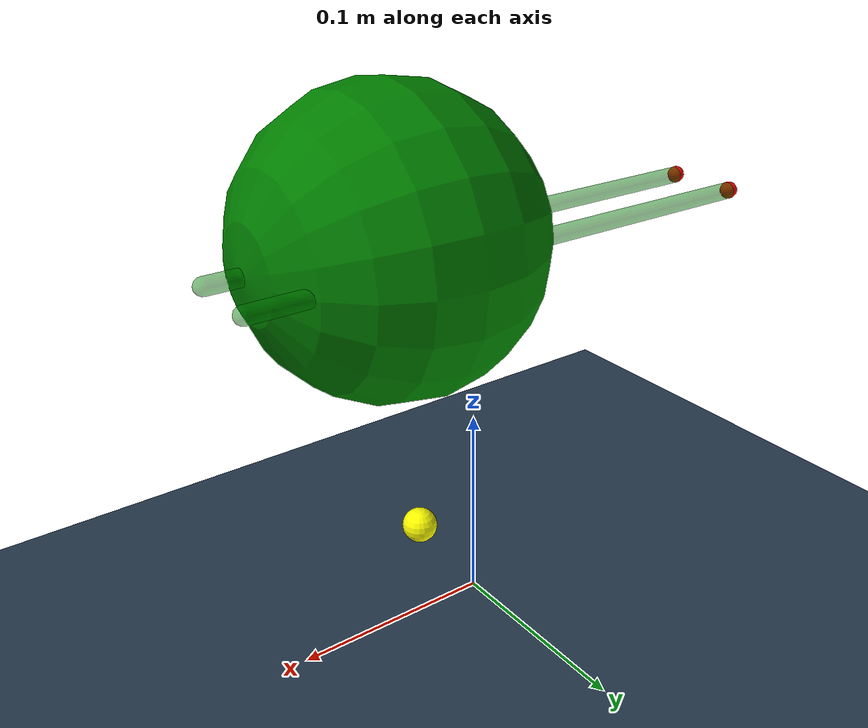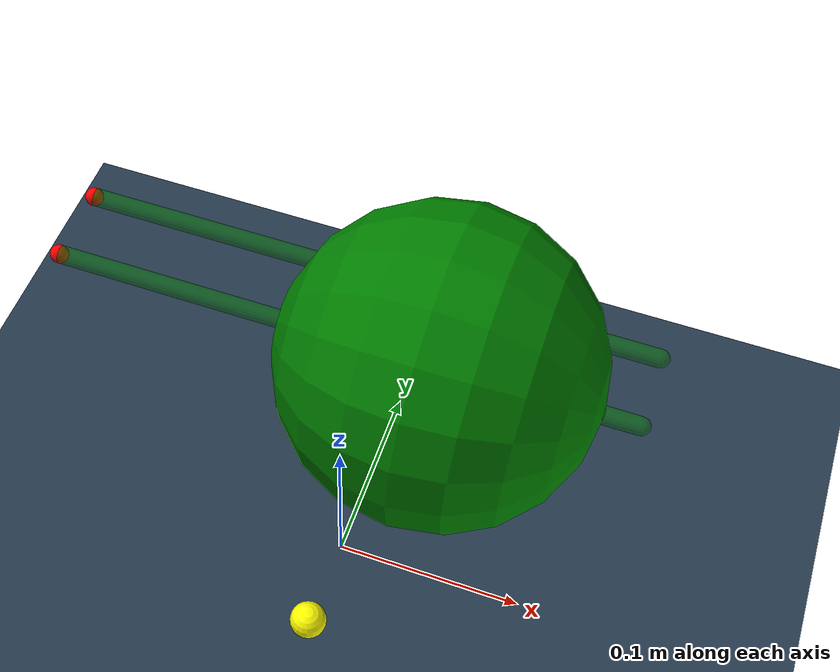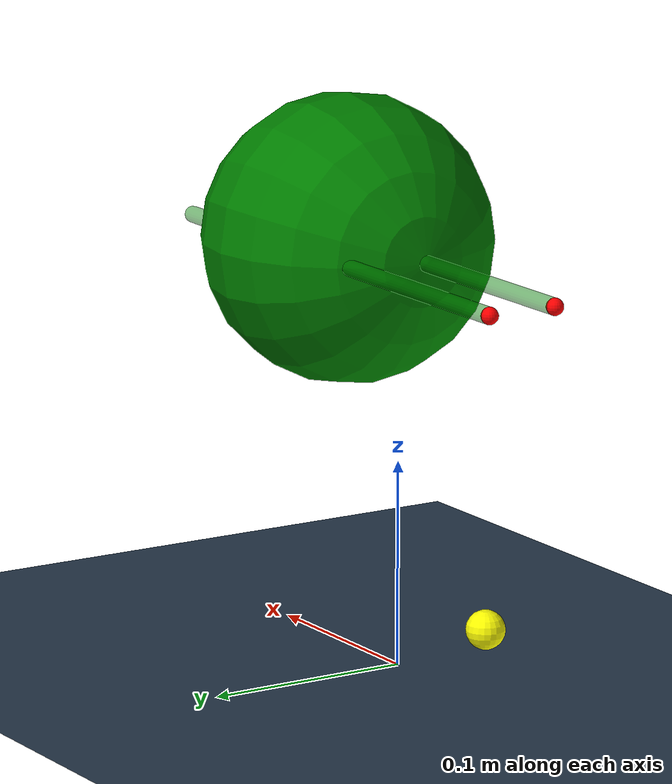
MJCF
<?xml version="1.0" encoding="utf-8"?>
<mujoco>
	<compiler angle="radian"></compiler>
	<size njmax="400" nconmax="100" nuser_jnt="1" nuser_site="1" nuser_tendon="1" nuser_sensor="1" nuser_actuator="16" nstack="600000"></size>
	<option timestep="0.01" iterations="20" apirate="200" noslip_iterations="20"  impratio="10"></option>
	<asset>
		<material name="self" rgba=".7 .5 .3 0.1"/>
		<texture builtin="gradient" height="100" rgb1="1 1 1" rgb2="0 0 0" type="skybox" width="100"/>
		<texture name="texplane" type="2d" builtin="checker" rgb1=".2 .3 .4" rgb2=".1 0.15 0.2" width="512" height="512"></texture>
		<material name="MatGnd" reflectance="0.5" texture="texplane" texrepeat="2 2" texuniform="true"></material>
		<material name="MatPlane" reflectance="0.05" texture="texplane" texrepeat="1 1" texuniform="true"></material>
	</asset>
	<default>
		<default class="Adroit">
			<geom friction="1 0.005 0.001" condim="3" margin="0.000" contype="1" conaffinity="1"></geom>
			<joint limited="true" damping="0.05" armature=".001" margin="0.01" frictionloss="0.001"></joint>
			<tendon limited="true"></tendon>
			<site size="0.005" rgba=".4 .9 .4 0"></site>
			<default class="D_Touch">
				<site type="box" size="0.009 0.004 0.013" pos="0 -.004 .018" rgba=".8 .8 .8 .15" group="4"></site>
			</default>
			<default class="DC_Hand">
				<geom contype="1" conaffinity="0" material="self" group="2"></geom>
			</default>
		</default>
	</default>

	<worldbody>
		<light diffuse="1 1 1" dir="-0 0 -1.3" directional="true" exponent="1" pos="0 0 1.3" specular=".1 .1 .1" castshadow = "false"/>
		<geom name="ground" pos="0 0 0" size="1 1 5" material="MatGnd" type="plane" contype="1" conaffinity="1"></geom>
            <body name = "chopstick2" pos = "0 0 0.2">
				<joint name="chopstick2" armature=".0001" type="free"></joint>
                <geom name="chopstick2" density="1000" condim="4" size="0.004 0.13" pos="0.0 -0.0 0.0" type="capsule"  margin="0.0005" quat="0.707 0 0.707 0" friction="1 0.005 0.0001" rgba="0  0.5 0. 0.5"></geom>
                <geom name="palm_virtual" density="1000" condim="4" size="0.07" pos="0.045 -0.0 0.0" type="sphere"  quat="0.707 0 0.707 0" rgba="0  0.5 0. 1"></geom>
				<site name="origin" pos="-0. 0.0 0.0" size=".0041" type="sphere" rgba="1 0 0 1."></site>
                <site name="end2" pos="-0.13 0.0 0.00" size=".0041" type="sphere" rgba = '1 0 0 1'></site>
                <body name="chopstick1" pos="0.045 0.035 0.0">
                    <joint name="Rz1" armature=".01" type="hinge" pos="0 0 0" axis="0 0 1" range="-0.2 0.2"></joint>
                    <geom name="chopstick1" density="1000" condim="4" size="0.004 0.13" pos="-0.045 -0.0 0.0" type="capsule" quat="0.707 0 0.707 0" margin="0.0005" friction="1 0.005 0.0001" rgba="0  0.5 0. 0.5"></geom>
					<site name="c_thtip" pos="0.0 0.0 0.0025" size=".004" type="sphere" rgba="1 0 0 1"></site>
                    <site name="c_mftip" pos="-0.04 0.0 -0.0025" size=".004" type="sphere" rgba="1 0 0 1"></site>
                    <site name="c_fftip" pos="-0.025 0.0025 0.00" size=".004" type="sphere" rgba="1 0 0 1"></site>
                    <site name="end1" pos="-0.175 0.0 0.0" size=".0041" type="sphere" rgba = '1 0 0 1'></site>
                </body>
            </body>

		<body name="object_0" pos="0.0 -0.05 0.009736723462287586" quat="1.0 0.0 0.0 0.0">
			<joint name="object_0" type="free" armature="0.0001"></joint>
			<geom name="object_0" size="0.009736723462287586" pos="0 0 0" type="sphere" rgba="1 1 0 1"></geom>
		</body>

	</worldbody>
</mujoco>
